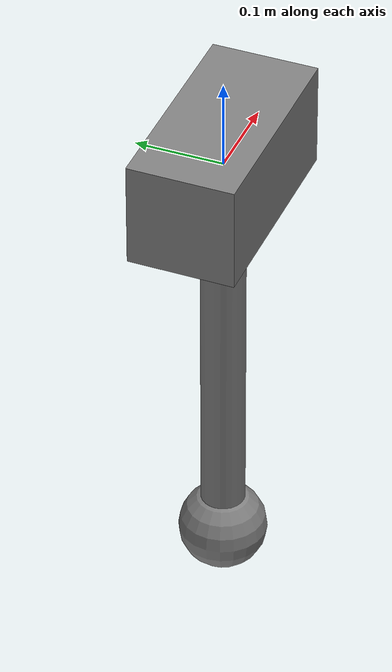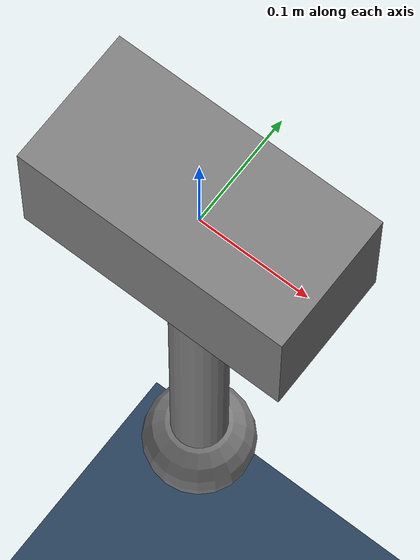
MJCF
<mujoco model="CartPole">
  <compiler eulerseq="XYZ"/>
  <default>
    <default class="unused"/>
  </default>
  <asset>
    <texture name="grid" type="2d" builtin="checker" rgb1="0.1 0.2 0.3" rgb2="0.2 0.3 0.4" width="512" height="512"/>
    <material name="plain" rgba="0.8 0.8 0.2 1" />
    <material name="grid" class="unused" texture="grid" texrepeat="1 1" texuniform="true" reflectance="0.2"/>
  </asset>
  <worldbody>
      <light name="main_light" pos="0 0 3" dir="0 0 -1" diffuse="1 1 1" specular="0.3 0.3 0.3"
      directional="true" />
    <geom name="floor" class="unused" type="plane" condim="3" size="0 0 0.05" material="grid"
      pos="0 0 -1" />
    <body name="Cart" pos="0 0 0" euler="0 -0 0">
      <!-- change inertia, different from sdf -->
      <inertial pos="0 0 0" mass="10" diaginertia="0.00000000001 0.00000000001 0.00000000001"/>
      <geom name="cart_visual" class="unused" type="box" contype="0" conaffinity="0" group="0" size="0.12 0.06 0.06" pos="0 0 0" euler="0 -0 0"/>
      <joint name="CartSlider" class="unused" type="slide" pos="0 0 0" axis="1 0 0"/>
      <body name="Pole" pos="0 0 -0.5" euler="0 -0 0">
        <inertial pos="0 0 0" mass="1" diaginertia="0.00000000001 0.00000000001 0.00000000001"/>
        <geom name="pole_point_mass" class="unused" type="sphere" contype="0" conaffinity="0" group="0" size="0.05" pos="0 0 0" euler="0 -0 0"/>
        <geom name="pole_rod" class="unused" type="cylinder" contype="0" conaffinity="0" group="0" size="0.025 0.25" pos="0 0 0.25" euler="0 -0 0"/>
        <joint name="PolePin" class="unused" type="hinge" pos="0 0 0.5" axis="0 -1 0"/>
      </body>
    </body>
  </worldbody>
  <sensor>
        <jointpos joint="CartSlider" name="cart_p"/>
        <jointpos joint="PolePin" name="pole_theta"/>
        <jointvel joint="CartSlider" name="cart_v"/>
        <jointvel joint="PolePin" name="pole_w"/>
  </sensor>
  <actuator>
    <motor joint="CartSlider"/>
  </actuator>

  <keyframe>
    <key name="off1" qpos="0 2.5"/>
  </keyframe>
</mujoco>
